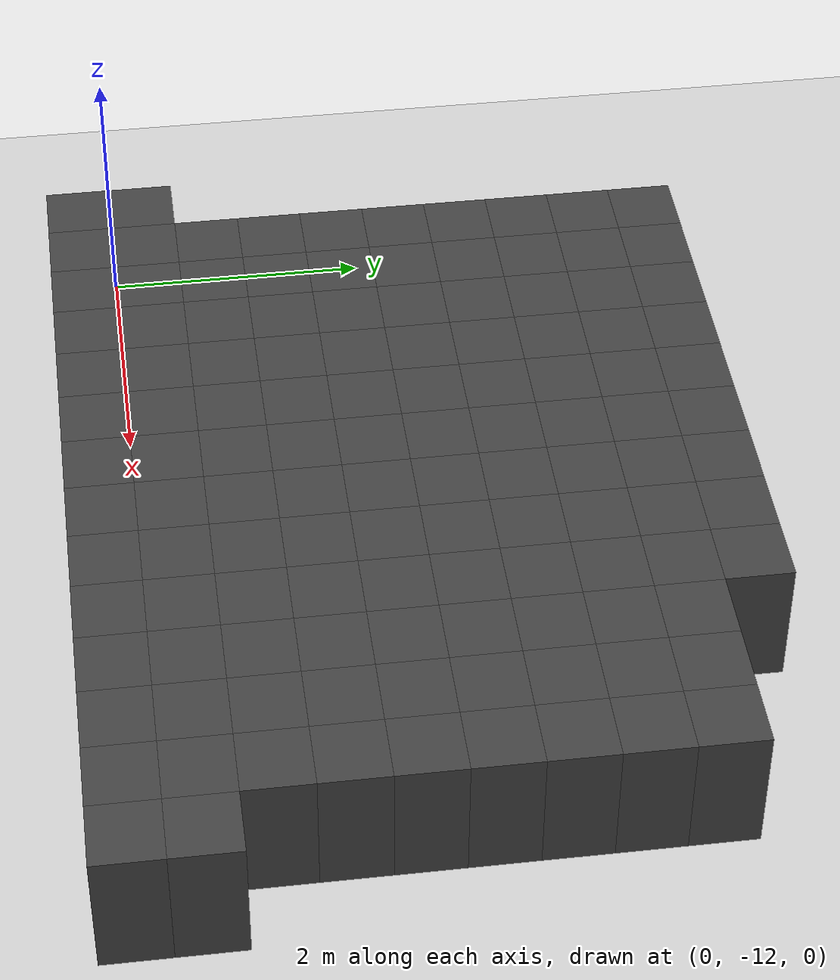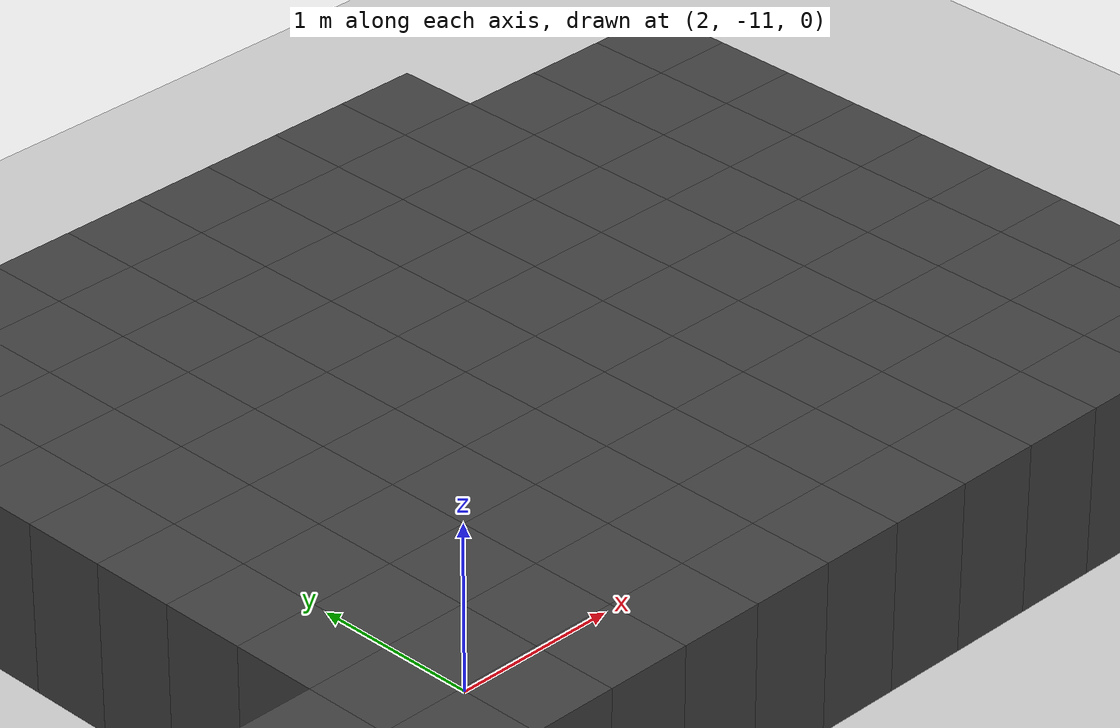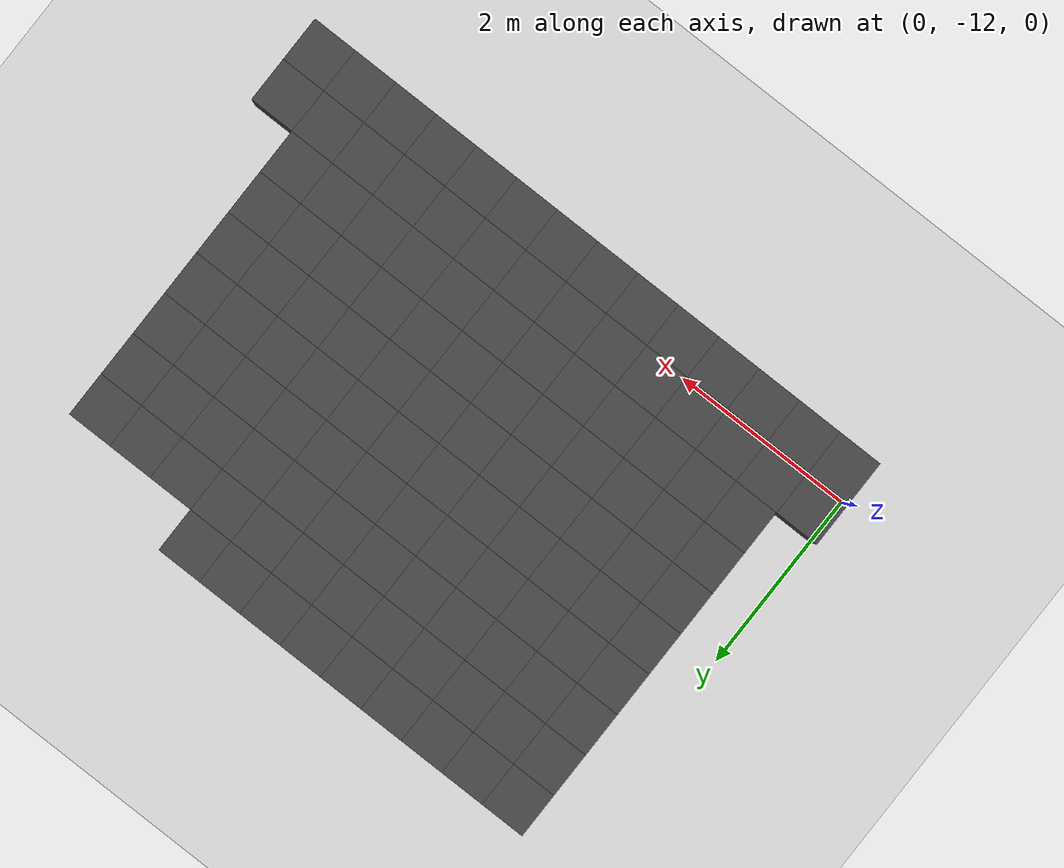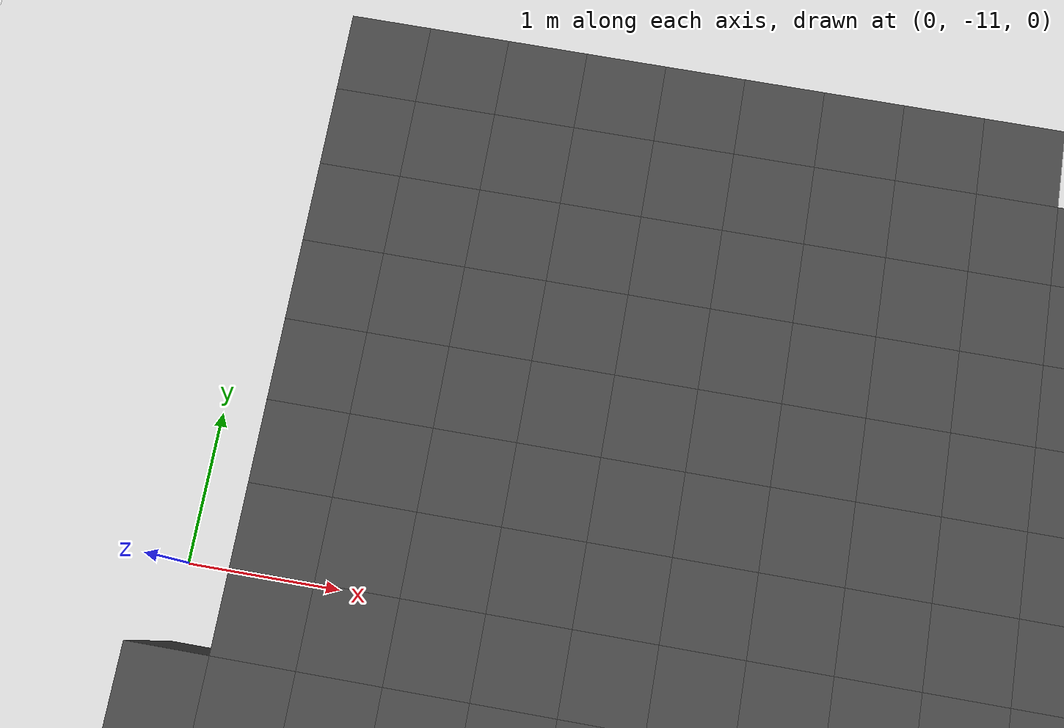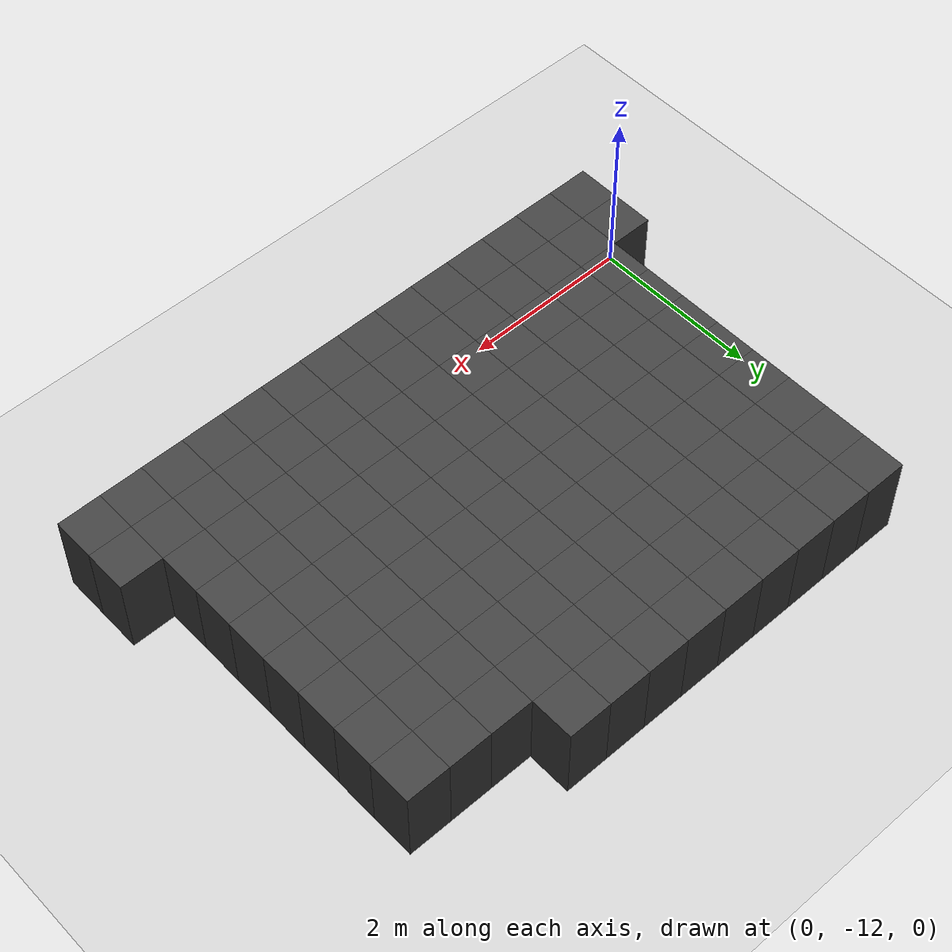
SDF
<sdf version="1.7">
 <world name="map_14510">
  <model name="ground_plane">
   <static>true</static>
   <link name="link">
    <collision name="collision">
     <geometry><plane><normal>0 0 1</normal><size>200 200</size></plane></geometry>
    </collision>
    <visual name="visual">
     <geometry><plane><normal>0 0 1</normal><size>200 200</size></plane></geometry>
     <material><ambient>0.8 0.8 0.8 1</ambient><diffuse>0.8 0.8 0.8 1</diffuse></material>
    </visual>
   </link>
  </model>
  <model name="maze_environment">
   <static>true</static>
   <link name="wall_1422">
    <pose>0.750 -7.750 0.500 0 0 0</pose>
    <collision name="col"><geometry><box><size>0.5 0.5 1.0</size></box></geometry></collision>
    <visual name="vis">
     <geometry><box><size>0.5 0.5 1.0</size></box></geometry>
     <material><ambient>0.15 0.15 0.15 1</ambient><diffuse>0.25 0.25 0.25 1</diffuse></material>
    </visual>
   </link>
   <link name="wall_1423">
    <pose>1.250 -7.750 0.500 0 0 0</pose>
    <collision name="col"><geometry><box><size>0.5 0.5 1.0</size></box></geometry></collision>
    <visual name="vis">
     <geometry><box><size>0.5 0.5 1.0</size></box></geometry>
     <material><ambient>0.15 0.15 0.15 1</ambient><diffuse>0.25 0.25 0.25 1</diffuse></material>
    </visual>
   </link>
   <link name="wall_1424">
    <pose>1.750 -7.750 0.500 0 0 0</pose>
    <collision name="col"><geometry><box><size>0.5 0.5 1.0</size></box></geometry></collision>
    <visual name="vis">
     <geometry><box><size>0.5 0.5 1.0</size></box></geometry>
     <material><ambient>0.15 0.15 0.15 1</ambient><diffuse>0.25 0.25 0.25 1</diffuse></material>
    </visual>
   </link>
   <link name="wall_1425">
    <pose>2.250 -7.750 0.500 0 0 0</pose>
    <collision name="col"><geometry><box><size>0.5 0.5 1.0</size></box></geometry></collision>
    <visual name="vis">
     <geometry><box><size>0.5 0.5 1.0</size></box></geometry>
     <material><ambient>0.15 0.15 0.15 1</ambient><diffuse>0.25 0.25 0.25 1</diffuse></material>
    </visual>
   </link>
   <link name="wall_1426">
    <pose>2.750 -7.750 0.500 0 0 0</pose>
    <collision name="col"><geometry><box><size>0.5 0.5 1.0</size></box></geometry></collision>
    <visual name="vis">
     <geometry><box><size>0.5 0.5 1.0</size></box></geometry>
     <material><ambient>0.15 0.15 0.15 1</ambient><diffuse>0.25 0.25 0.25 1</diffuse></material>
    </visual>
   </link>
   <link name="wall_1427">
    <pose>3.250 -7.750 0.500 0 0 0</pose>
    <collision name="col"><geometry><box><size>0.5 0.5 1.0</size></box></geometry></collision>
    <visual name="vis">
     <geometry><box><size>0.5 0.5 1.0</size></box></geometry>
     <material><ambient>0.15 0.15 0.15 1</ambient><diffuse>0.25 0.25 0.25 1</diffuse></material>
    </visual>
   </link>
   <link name="wall_1428">
    <pose>3.750 -7.750 0.500 0 0 0</pose>
    <collision name="col"><geometry><box><size>0.5 0.5 1.0</size></box></geometry></collision>
    <visual name="vis">
     <geometry><box><size>0.5 0.5 1.0</size></box></geometry>
     <material><ambient>0.15 0.15 0.15 1</ambient><diffuse>0.25 0.25 0.25 1</diffuse></material>
    </visual>
   </link>
   <link name="wall_1429">
    <pose>4.250 -7.750 0.500 0 0 0</pose>
    <collision name="col"><geometry><box><size>0.5 0.5 1.0</size></box></geometry></collision>
    <visual name="vis">
     <geometry><box><size>0.5 0.5 1.0</size></box></geometry>
     <material><ambient>0.15 0.15 0.15 1</ambient><diffuse>0.25 0.25 0.25 1</diffuse></material>
    </visual>
   </link>
   <link name="wall_1430">
    <pose>4.750 -7.750 0.500 0 0 0</pose>
    <collision name="col"><geometry><box><size>0.5 0.5 1.0</size></box></geometry></collision>
    <visual name="vis">
     <geometry><box><size>0.5 0.5 1.0</size></box></geometry>
     <material><ambient>0.15 0.15 0.15 1</ambient><diffuse>0.25 0.25 0.25 1</diffuse></material>
    </visual>
   </link>
   <link name="wall_1465">
    <pose>0.750 -8.250 0.500 0 0 0</pose>
    <collision name="col"><geometry><box><size>0.5 0.5 1.0</size></box></geometry></collision>
    <visual name="vis">
     <geometry><box><size>0.5 0.5 1.0</size></box></geometry>
     <material><ambient>0.15 0.15 0.15 1</ambient><diffuse>0.25 0.25 0.25 1</diffuse></material>
    </visual>
   </link>
   <link name="wall_1466">
    <pose>1.250 -8.250 0.500 0 0 0</pose>
    <collision name="col"><geometry><box><size>0.5 0.5 1.0</size></box></geometry></collision>
    <visual name="vis">
     <geometry><box><size>0.5 0.5 1.0</size></box></geometry>
     <material><ambient>0.15 0.15 0.15 1</ambient><diffuse>0.25 0.25 0.25 1</diffuse></material>
    </visual>
   </link>
   <link name="wall_1467">
    <pose>1.750 -8.250 0.500 0 0 0</pose>
    <collision name="col"><geometry><box><size>0.5 0.5 1.0</size></box></geometry></collision>
    <visual name="vis">
     <geometry><box><size>0.5 0.5 1.0</size></box></geometry>
     <material><ambient>0.15 0.15 0.15 1</ambient><diffuse>0.25 0.25 0.25 1</diffuse></material>
    </visual>
   </link>
   <link name="wall_1468">
    <pose>2.250 -8.250 0.500 0 0 0</pose>
    <collision name="col"><geometry><box><size>0.5 0.5 1.0</size></box></geometry></collision>
    <visual name="vis">
     <geometry><box><size>0.5 0.5 1.0</size></box></geometry>
     <material><ambient>0.15 0.15 0.15 1</ambient><diffuse>0.25 0.25 0.25 1</diffuse></material>
    </visual>
   </link>
   <link name="wall_1469">
    <pose>2.750 -8.250 0.500 0 0 0</pose>
    <collision name="col"><geometry><box><size>0.5 0.5 1.0</size></box></geometry></collision>
    <visual name="vis">
     <geometry><box><size>0.5 0.5 1.0</size></box></geometry>
     <material><ambient>0.15 0.15 0.15 1</ambient><diffuse>0.25 0.25 0.25 1</diffuse></material>
    </visual>
   </link>
   <link name="wall_1470">
    <pose>3.250 -8.250 0.500 0 0 0</pose>
    <collision name="col"><geometry><box><size>0.5 0.5 1.0</size></box></geometry></collision>
    <visual name="vis">
     <geometry><box><size>0.5 0.5 1.0</size></box></geometry>
     <material><ambient>0.15 0.15 0.15 1</ambient><diffuse>0.25 0.25 0.25 1</diffuse></material>
    </visual>
   </link>
   <link name="wall_1471">
    <pose>3.750 -8.250 0.500 0 0 0</pose>
    <collision name="col"><geometry><box><size>0.5 0.5 1.0</size></box></geometry></collision>
    <visual name="vis">
     <geometry><box><size>0.5 0.5 1.0</size></box></geometry>
     <material><ambient>0.15 0.15 0.15 1</ambient><diffuse>0.25 0.25 0.25 1</diffuse></material>
    </visual>
   </link>
   <link name="wall_1472">
    <pose>4.250 -8.250 0.500 0 0 0</pose>
    <collision name="col"><geometry><box><size>0.5 0.5 1.0</size></box></geometry></collision>
    <visual name="vis">
     <geometry><box><size>0.5 0.5 1.0</size></box></geometry>
     <material><ambient>0.15 0.15 0.15 1</ambient><diffuse>0.25 0.25 0.25 1</diffuse></material>
    </visual>
   </link>
   <link name="wall_1473">
    <pose>4.750 -8.250 0.500 0 0 0</pose>
    <collision name="col"><geometry><box><size>0.5 0.5 1.0</size></box></geometry></collision>
    <visual name="vis">
     <geometry><box><size>0.5 0.5 1.0</size></box></geometry>
     <material><ambient>0.15 0.15 0.15 1</ambient><diffuse>0.25 0.25 0.25 1</diffuse></material>
    </visual>
   </link>
   <link name="wall_1474">
    <pose>5.250 -8.250 0.500 0 0 0</pose>
    <collision name="col"><geometry><box><size>0.5 0.5 1.0</size></box></geometry></collision>
    <visual name="vis">
     <geometry><box><size>0.5 0.5 1.0</size></box></geometry>
     <material><ambient>0.15 0.15 0.15 1</ambient><diffuse>0.25 0.25 0.25 1</diffuse></material>
    </visual>
   </link>
   <link name="wall_1475">
    <pose>5.750 -8.250 0.500 0 0 0</pose>
    <collision name="col"><geometry><box><size>0.5 0.5 1.0</size></box></geometry></collision>
    <visual name="vis">
     <geometry><box><size>0.5 0.5 1.0</size></box></geometry>
     <material><ambient>0.15 0.15 0.15 1</ambient><diffuse>0.25 0.25 0.25 1</diffuse></material>
    </visual>
   </link>
   <link name="wall_1476">
    <pose>6.250 -8.250 0.500 0 0 0</pose>
    <collision name="col"><geometry><box><size>0.5 0.5 1.0</size></box></geometry></collision>
    <visual name="vis">
     <geometry><box><size>0.5 0.5 1.0</size></box></geometry>
     <material><ambient>0.15 0.15 0.15 1</ambient><diffuse>0.25 0.25 0.25 1</diffuse></material>
    </visual>
   </link>
   <link name="wall_1513">
    <pose>0.750 -8.750 0.500 0 0 0</pose>
    <collision name="col"><geometry><box><size>0.5 0.5 1.0</size></box></geometry></collision>
    <visual name="vis">
     <geometry><box><size>0.5 0.5 1.0</size></box></geometry>
     <material><ambient>0.15 0.15 0.15 1</ambient><diffuse>0.25 0.25 0.25 1</diffuse></material>
    </visual>
   </link>
   <link name="wall_1514">
    <pose>1.250 -8.750 0.500 0 0 0</pose>
    <collision name="col"><geometry><box><size>0.5 0.5 1.0</size></box></geometry></collision>
    <visual name="vis">
     <geometry><box><size>0.5 0.5 1.0</size></box></geometry>
     <material><ambient>0.15 0.15 0.15 1</ambient><diffuse>0.25 0.25 0.25 1</diffuse></material>
    </visual>
   </link>
   <link name="wall_1515">
    <pose>1.750 -8.750 0.500 0 0 0</pose>
    <collision name="col"><geometry><box><size>0.5 0.5 1.0</size></box></geometry></collision>
    <visual name="vis">
     <geometry><box><size>0.5 0.5 1.0</size></box></geometry>
     <material><ambient>0.15 0.15 0.15 1</ambient><diffuse>0.25 0.25 0.25 1</diffuse></material>
    </visual>
   </link>
   <link name="wall_1516">
    <pose>2.250 -8.750 0.500 0 0 0</pose>
    <collision name="col"><geometry><box><size>0.5 0.5 1.0</size></box></geometry></collision>
    <visual name="vis">
     <geometry><box><size>0.5 0.5 1.0</size></box></geometry>
     <material><ambient>0.15 0.15 0.15 1</ambient><diffuse>0.25 0.25 0.25 1</diffuse></material>
    </visual>
   </link>
   <link name="wall_1517">
    <pose>2.750 -8.750 0.500 0 0 0</pose>
    <collision name="col"><geometry><box><size>0.5 0.5 1.0</size></box></geometry></collision>
    <visual name="vis">
     <geometry><box><size>0.5 0.5 1.0</size></box></geometry>
     <material><ambient>0.15 0.15 0.15 1</ambient><diffuse>0.25 0.25 0.25 1</diffuse></material>
    </visual>
   </link>
   <link name="wall_1518">
    <pose>3.250 -8.750 0.500 0 0 0</pose>
    <collision name="col"><geometry><box><size>0.5 0.5 1.0</size></box></geometry></collision>
    <visual name="vis">
     <geometry><box><size>0.5 0.5 1.0</size></box></geometry>
     <material><ambient>0.15 0.15 0.15 1</ambient><diffuse>0.25 0.25 0.25 1</diffuse></material>
    </visual>
   </link>
   <link name="wall_1519">
    <pose>3.750 -8.750 0.500 0 0 0</pose>
    <collision name="col"><geometry><box><size>0.5 0.5 1.0</size></box></geometry></collision>
    <visual name="vis">
     <geometry><box><size>0.5 0.5 1.0</size></box></geometry>
     <material><ambient>0.15 0.15 0.15 1</ambient><diffuse>0.25 0.25 0.25 1</diffuse></material>
    </visual>
   </link>
   <link name="wall_1520">
    <pose>4.250 -8.750 0.500 0 0 0</pose>
    <collision name="col"><geometry><box><size>0.5 0.5 1.0</size></box></geometry></collision>
    <visual name="vis">
     <geometry><box><size>0.5 0.5 1.0</size></box></geometry>
     <material><ambient>0.15 0.15 0.15 1</ambient><diffuse>0.25 0.25 0.25 1</diffuse></material>
    </visual>
   </link>
   <link name="wall_1521">
    <pose>4.750 -8.750 0.500 0 0 0</pose>
    <collision name="col"><geometry><box><size>0.5 0.5 1.0</size></box></geometry></collision>
    <visual name="vis">
     <geometry><box><size>0.5 0.5 1.0</size></box></geometry>
     <material><ambient>0.15 0.15 0.15 1</ambient><diffuse>0.25 0.25 0.25 1</diffuse></material>
    </visual>
   </link>
   <link name="wall_1522">
    <pose>5.250 -8.750 0.500 0 0 0</pose>
    <collision name="col"><geometry><box><size>0.5 0.5 1.0</size></box></geometry></collision>
    <visual name="vis">
     <geometry><box><size>0.5 0.5 1.0</size></box></geometry>
     <material><ambient>0.15 0.15 0.15 1</ambient><diffuse>0.25 0.25 0.25 1</diffuse></material>
    </visual>
   </link>
   <link name="wall_1523">
    <pose>5.750 -8.750 0.500 0 0 0</pose>
    <collision name="col"><geometry><box><size>0.5 0.5 1.0</size></box></geometry></collision>
    <visual name="vis">
     <geometry><box><size>0.5 0.5 1.0</size></box></geometry>
     <material><ambient>0.15 0.15 0.15 1</ambient><diffuse>0.25 0.25 0.25 1</diffuse></material>
    </visual>
   </link>
   <link name="wall_1524">
    <pose>6.250 -8.750 0.500 0 0 0</pose>
    <collision name="col"><geometry><box><size>0.5 0.5 1.0</size></box></geometry></collision>
    <visual name="vis">
     <geometry><box><size>0.5 0.5 1.0</size></box></geometry>
     <material><ambient>0.15 0.15 0.15 1</ambient><diffuse>0.25 0.25 0.25 1</diffuse></material>
    </visual>
   </link>
   <link name="wall_1554">
    <pose>0.750 -9.250 0.500 0 0 0</pose>
    <collision name="col"><geometry><box><size>0.5 0.5 1.0</size></box></geometry></collision>
    <visual name="vis">
     <geometry><box><size>0.5 0.5 1.0</size></box></geometry>
     <material><ambient>0.15 0.15 0.15 1</ambient><diffuse>0.25 0.25 0.25 1</diffuse></material>
    </visual>
   </link>
   <link name="wall_1555">
    <pose>1.250 -9.250 0.500 0 0 0</pose>
    <collision name="col"><geometry><box><size>0.5 0.5 1.0</size></box></geometry></collision>
    <visual name="vis">
     <geometry><box><size>0.5 0.5 1.0</size></box></geometry>
     <material><ambient>0.15 0.15 0.15 1</ambient><diffuse>0.25 0.25 0.25 1</diffuse></material>
    </visual>
   </link>
   <link name="wall_1556">
    <pose>1.750 -9.250 0.500 0 0 0</pose>
    <collision name="col"><geometry><box><size>0.5 0.5 1.0</size></box></geometry></collision>
    <visual name="vis">
     <geometry><box><size>0.5 0.5 1.0</size></box></geometry>
     <material><ambient>0.15 0.15 0.15 1</ambient><diffuse>0.25 0.25 0.25 1</diffuse></material>
    </visual>
   </link>
   <link name="wall_1557">
    <pose>2.250 -9.250 0.500 0 0 0</pose>
    <collision name="col"><geometry><box><size>0.5 0.5 1.0</size></box></geometry></collision>
    <visual name="vis">
     <geometry><box><size>0.5 0.5 1.0</size></box></geometry>
     <material><ambient>0.15 0.15 0.15 1</ambient><diffuse>0.25 0.25 0.25 1</diffuse></material>
    </visual>
   </link>
   <link name="wall_1558">
    <pose>2.750 -9.250 0.500 0 0 0</pose>
    <collision name="col"><geometry><box><size>0.5 0.5 1.0</size></box></geometry></collision>
    <visual name="vis">
     <geometry><box><size>0.5 0.5 1.0</size></box></geometry>
     <material><ambient>0.15 0.15 0.15 1</ambient><diffuse>0.25 0.25 0.25 1</diffuse></material>
    </visual>
   </link>
   <link name="wall_1559">
    <pose>3.250 -9.250 0.500 0 0 0</pose>
    <collision name="col"><geometry><box><size>0.5 0.5 1.0</size></box></geometry></collision>
    <visual name="vis">
     <geometry><box><size>0.5 0.5 1.0</size></box></geometry>
     <material><ambient>0.15 0.15 0.15 1</ambient><diffuse>0.25 0.25 0.25 1</diffuse></material>
    </visual>
   </link>
   <link name="wall_1560">
    <pose>3.750 -9.250 0.500 0 0 0</pose>
    <collision name="col"><geometry><box><size>0.5 0.5 1.0</size></box></geometry></collision>
    <visual name="vis">
     <geometry><box><size>0.5 0.5 1.0</size></box></geometry>
     <material><ambient>0.15 0.15 0.15 1</ambient><diffuse>0.25 0.25 0.25 1</diffuse></material>
    </visual>
   </link>
   <link name="wall_1561">
    <pose>4.250 -9.250 0.500 0 0 0</pose>
    <collision name="col"><geometry><box><size>0.5 0.5 1.0</size></box></geometry></collision>
    <visual name="vis">
     <geometry><box><size>0.5 0.5 1.0</size></box></geometry>
     <material><ambient>0.15 0.15 0.15 1</ambient><diffuse>0.25 0.25 0.25 1</diffuse></material>
    </visual>
   </link>
   <link name="wall_1562">
    <pose>4.750 -9.250 0.500 0 0 0</pose>
    <collision name="col"><geometry><box><size>0.5 0.5 1.0</size></box></geometry></collision>
    <visual name="vis">
     <geometry><box><size>0.5 0.5 1.0</size></box></geometry>
     <material><ambient>0.15 0.15 0.15 1</ambient><diffuse>0.25 0.25 0.25 1</diffuse></material>
    </visual>
   </link>
   <link name="wall_1563">
    <pose>5.250 -9.250 0.500 0 0 0</pose>
    <collision name="col"><geometry><box><size>0.5 0.5 1.0</size></box></geometry></collision>
    <visual name="vis">
     <geometry><box><size>0.5 0.5 1.0</size></box></geometry>
     <material><ambient>0.15 0.15 0.15 1</ambient><diffuse>0.25 0.25 0.25 1</diffuse></material>
    </visual>
   </link>
   <link name="wall_1564">
    <pose>5.750 -9.250 0.500 0 0 0</pose>
    <collision name="col"><geometry><box><size>0.5 0.5 1.0</size></box></geometry></collision>
    <visual name="vis">
     <geometry><box><size>0.5 0.5 1.0</size></box></geometry>
     <material><ambient>0.15 0.15 0.15 1</ambient><diffuse>0.25 0.25 0.25 1</diffuse></material>
    </visual>
   </link>
   <link name="wall_1565">
    <pose>6.250 -9.250 0.500 0 0 0</pose>
    <collision name="col"><geometry><box><size>0.5 0.5 1.0</size></box></geometry></collision>
    <visual name="vis">
     <geometry><box><size>0.5 0.5 1.0</size></box></geometry>
     <material><ambient>0.15 0.15 0.15 1</ambient><diffuse>0.25 0.25 0.25 1</diffuse></material>
    </visual>
   </link>
   <link name="wall_1595">
    <pose>0.750 -9.750 0.500 0 0 0</pose>
    <collision name="col"><geometry><box><size>0.5 0.5 1.0</size></box></geometry></collision>
    <visual name="vis">
     <geometry><box><size>0.5 0.5 1.0</size></box></geometry>
     <material><ambient>0.15 0.15 0.15 1</ambient><diffuse>0.25 0.25 0.25 1</diffuse></material>
    </visual>
   </link>
   <link name="wall_1596">
    <pose>1.250 -9.750 0.500 0 0 0</pose>
    <collision name="col"><geometry><box><size>0.5 0.5 1.0</size></box></geometry></collision>
    <visual name="vis">
     <geometry><box><size>0.5 0.5 1.0</size></box></geometry>
     <material><ambient>0.15 0.15 0.15 1</ambient><diffuse>0.25 0.25 0.25 1</diffuse></material>
    </visual>
   </link>
   <link name="wall_1597">
    <pose>1.750 -9.750 0.500 0 0 0</pose>
    <collision name="col"><geometry><box><size>0.5 0.5 1.0</size></box></geometry></collision>
    <visual name="vis">
     <geometry><box><size>0.5 0.5 1.0</size></box></geometry>
     <material><ambient>0.15 0.15 0.15 1</ambient><diffuse>0.25 0.25 0.25 1</diffuse></material>
    </visual>
   </link>
   <link name="wall_1598">
    <pose>2.250 -9.750 0.500 0 0 0</pose>
    <collision name="col"><geometry><box><size>0.5 0.5 1.0</size></box></geometry></collision>
    <visual name="vis">
     <geometry><box><size>0.5 0.5 1.0</size></box></geometry>
     <material><ambient>0.15 0.15 0.15 1</ambient><diffuse>0.25 0.25 0.25 1</diffuse></material>
    </visual>
   </link>
   <link name="wall_1599">
    <pose>2.750 -9.750 0.500 0 0 0</pose>
    <collision name="col"><geometry><box><size>0.5 0.5 1.0</size></box></geometry></collision>
    <visual name="vis">
     <geometry><box><size>0.5 0.5 1.0</size></box></geometry>
     <material><ambient>0.15 0.15 0.15 1</ambient><diffuse>0.25 0.25 0.25 1</diffuse></material>
    </visual>
   </link>
   <link name="wall_1600">
    <pose>3.250 -9.750 0.500 0 0 0</pose>
    <collision name="col"><geometry><box><size>0.5 0.5 1.0</size></box></geometry></collision>
    <visual name="vis">
     <geometry><box><size>0.5 0.5 1.0</size></box></geometry>
     <material><ambient>0.15 0.15 0.15 1</ambient><diffuse>0.25 0.25 0.25 1</diffuse></material>
    </visual>
   </link>
   <link name="wall_1601">
    <pose>3.750 -9.750 0.500 0 0 0</pose>
    <collision name="col"><geometry><box><size>0.5 0.5 1.0</size></box></geometry></collision>
    <visual name="vis">
     <geometry><box><size>0.5 0.5 1.0</size></box></geometry>
     <material><ambient>0.15 0.15 0.15 1</ambient><diffuse>0.25 0.25 0.25 1</diffuse></material>
    </visual>
   </link>
   <link name="wall_1602">
    <pose>4.250 -9.750 0.500 0 0 0</pose>
    <collision name="col"><geometry><box><size>0.5 0.5 1.0</size></box></geometry></collision>
    <visual name="vis">
     <geometry><box><size>0.5 0.5 1.0</size></box></geometry>
     <material><ambient>0.15 0.15 0.15 1</ambient><diffuse>0.25 0.25 0.25 1</diffuse></material>
    </visual>
   </link>
   <link name="wall_1603">
    <pose>4.750 -9.750 0.500 0 0 0</pose>
    <collision name="col"><geometry><box><size>0.5 0.5 1.0</size></box></geometry></collision>
    <visual name="vis">
     <geometry><box><size>0.5 0.5 1.0</size></box></geometry>
     <material><ambient>0.15 0.15 0.15 1</ambient><diffuse>0.25 0.25 0.25 1</diffuse></material>
    </visual>
   </link>
   <link name="wall_1604">
    <pose>5.250 -9.750 0.500 0 0 0</pose>
    <collision name="col"><geometry><box><size>0.5 0.5 1.0</size></box></geometry></collision>
    <visual name="vis">
     <geometry><box><size>0.5 0.5 1.0</size></box></geometry>
     <material><ambient>0.15 0.15 0.15 1</ambient><diffuse>0.25 0.25 0.25 1</diffuse></material>
    </visual>
   </link>
   <link name="wall_1605">
    <pose>5.750 -9.750 0.500 0 0 0</pose>
    <collision name="col"><geometry><box><size>0.5 0.5 1.0</size></box></geometry></collision>
    <visual name="vis">
     <geometry><box><size>0.5 0.5 1.0</size></box></geometry>
     <material><ambient>0.15 0.15 0.15 1</ambient><diffuse>0.25 0.25 0.25 1</diffuse></material>
    </visual>
   </link>
   <link name="wall_1606">
    <pose>6.250 -9.750 0.500 0 0 0</pose>
    <collision name="col"><geometry><box><size>0.5 0.5 1.0</size></box></geometry></collision>
    <visual name="vis">
     <geometry><box><size>0.5 0.5 1.0</size></box></geometry>
     <material><ambient>0.15 0.15 0.15 1</ambient><diffuse>0.25 0.25 0.25 1</diffuse></material>
    </visual>
   </link>
   <link name="wall_1627">
    <pose>0.750 -10.250 0.500 0 0 0</pose>
    <collision name="col"><geometry><box><size>0.5 0.5 1.0</size></box></geometry></collision>
    <visual name="vis">
     <geometry><box><size>0.5 0.5 1.0</size></box></geometry>
     <material><ambient>0.15 0.15 0.15 1</ambient><diffuse>0.25 0.25 0.25 1</diffuse></material>
    </visual>
   </link>
   <link name="wall_1628">
    <pose>1.250 -10.250 0.500 0 0 0</pose>
    <collision name="col"><geometry><box><size>0.5 0.5 1.0</size></box></geometry></collision>
    <visual name="vis">
     <geometry><box><size>0.5 0.5 1.0</size></box></geometry>
     <material><ambient>0.15 0.15 0.15 1</ambient><diffuse>0.25 0.25 0.25 1</diffuse></material>
    </visual>
   </link>
   <link name="wall_1629">
    <pose>1.750 -10.250 0.500 0 0 0</pose>
    <collision name="col"><geometry><box><size>0.5 0.5 1.0</size></box></geometry></collision>
    <visual name="vis">
     <geometry><box><size>0.5 0.5 1.0</size></box></geometry>
     <material><ambient>0.15 0.15 0.15 1</ambient><diffuse>0.25 0.25 0.25 1</diffuse></material>
    </visual>
   </link>
   <link name="wall_1630">
    <pose>2.250 -10.250 0.500 0 0 0</pose>
    <collision name="col"><geometry><box><size>0.5 0.5 1.0</size></box></geometry></collision>
    <visual name="vis">
     <geometry><box><size>0.5 0.5 1.0</size></box></geometry>
     <material><ambient>0.15 0.15 0.15 1</ambient><diffuse>0.25 0.25 0.25 1</diffuse></material>
    </visual>
   </link>
   <link name="wall_1631">
    <pose>2.750 -10.250 0.500 0 0 0</pose>
    <collision name="col"><geometry><box><size>0.5 0.5 1.0</size></box></geometry></collision>
    <visual name="vis">
     <geometry><box><size>0.5 0.5 1.0</size></box></geometry>
     <material><ambient>0.15 0.15 0.15 1</ambient><diffuse>0.25 0.25 0.25 1</diffuse></material>
    </visual>
   </link>
   <link name="wall_1632">
    <pose>3.250 -10.250 0.500 0 0 0</pose>
    <collision name="col"><geometry><box><size>0.5 0.5 1.0</size></box></geometry></collision>
    <visual name="vis">
     <geometry><box><size>0.5 0.5 1.0</size></box></geometry>
     <material><ambient>0.15 0.15 0.15 1</ambient><diffuse>0.25 0.25 0.25 1</diffuse></material>
    </visual>
   </link>
   <link name="wall_1633">
    <pose>3.750 -10.250 0.500 0 0 0</pose>
    <collision name="col"><geometry><box><size>0.5 0.5 1.0</size></box></geometry></collision>
    <visual name="vis">
     <geometry><box><size>0.5 0.5 1.0</size></box></geometry>
     <material><ambient>0.15 0.15 0.15 1</ambient><diffuse>0.25 0.25 0.25 1</diffuse></material>
    </visual>
   </link>
   <link name="wall_1634">
    <pose>4.250 -10.250 0.500 0 0 0</pose>
    <collision name="col"><geometry><box><size>0.5 0.5 1.0</size></box></geometry></collision>
    <visual name="vis">
     <geometry><box><size>0.5 0.5 1.0</size></box></geometry>
     <material><ambient>0.15 0.15 0.15 1</ambient><diffuse>0.25 0.25 0.25 1</diffuse></material>
    </visual>
   </link>
   <link name="wall_1635">
    <pose>4.750 -10.250 0.500 0 0 0</pose>
    <collision name="col"><geometry><box><size>0.5 0.5 1.0</size></box></geometry></collision>
    <visual name="vis">
     <geometry><box><size>0.5 0.5 1.0</size></box></geometry>
     <material><ambient>0.15 0.15 0.15 1</ambient><diffuse>0.25 0.25 0.25 1</diffuse></material>
    </visual>
   </link>
   <link name="wall_1636">
    <pose>5.250 -10.250 0.500 0 0 0</pose>
    <collision name="col"><geometry><box><size>0.5 0.5 1.0</size></box></geometry></collision>
    <visual name="vis">
     <geometry><box><size>0.5 0.5 1.0</size></box></geometry>
     <material><ambient>0.15 0.15 0.15 1</ambient><diffuse>0.25 0.25 0.25 1</diffuse></material>
    </visual>
   </link>
   <link name="wall_1637">
    <pose>5.750 -10.250 0.500 0 0 0</pose>
    <collision name="col"><geometry><box><size>0.5 0.5 1.0</size></box></geometry></collision>
    <visual name="vis">
     <geometry><box><size>0.5 0.5 1.0</size></box></geometry>
     <material><ambient>0.15 0.15 0.15 1</ambient><diffuse>0.25 0.25 0.25 1</diffuse></material>
    </visual>
   </link>
   <link name="wall_1638">
    <pose>6.250 -10.250 0.500 0 0 0</pose>
    <collision name="col"><geometry><box><size>0.5 0.5 1.0</size></box></geometry></collision>
    <visual name="vis">
     <geometry><box><size>0.5 0.5 1.0</size></box></geometry>
     <material><ambient>0.15 0.15 0.15 1</ambient><diffuse>0.25 0.25 0.25 1</diffuse></material>
    </visual>
   </link>
   <link name="wall_1669">
    <pose>0.750 -10.750 0.500 0 0 0</pose>
    <collision name="col"><geometry><box><size>0.5 0.5 1.0</size></box></geometry></collision>
    <visual name="vis">
     <geometry><box><size>0.5 0.5 1.0</size></box></geometry>
     <material><ambient>0.15 0.15 0.15 1</ambient><diffuse>0.25 0.25 0.25 1</diffuse></material>
    </visual>
   </link>
   <link name="wall_1670">
    <pose>1.250 -10.750 0.500 0 0 0</pose>
    <collision name="col"><geometry><box><size>0.5 0.5 1.0</size></box></geometry></collision>
    <visual name="vis">
     <geometry><box><size>0.5 0.5 1.0</size></box></geometry>
     <material><ambient>0.15 0.15 0.15 1</ambient><diffuse>0.25 0.25 0.25 1</diffuse></material>
    </visual>
   </link>
   <link name="wall_1671">
    <pose>1.750 -10.750 0.500 0 0 0</pose>
    <collision name="col"><geometry><box><size>0.5 0.5 1.0</size></box></geometry></collision>
    <visual name="vis">
     <geometry><box><size>0.5 0.5 1.0</size></box></geometry>
     <material><ambient>0.15 0.15 0.15 1</ambient><diffuse>0.25 0.25 0.25 1</diffuse></material>
    </visual>
   </link>
   <link name="wall_1672">
    <pose>2.250 -10.750 0.500 0 0 0</pose>
    <collision name="col"><geometry><box><size>0.5 0.5 1.0</size></box></geometry></collision>
    <visual name="vis">
     <geometry><box><size>0.5 0.5 1.0</size></box></geometry>
     <material><ambient>0.15 0.15 0.15 1</ambient><diffuse>0.25 0.25 0.25 1</diffuse></material>
    </visual>
   </link>
   <link name="wall_1673">
    <pose>2.750 -10.750 0.500 0 0 0</pose>
    <collision name="col"><geometry><box><size>0.5 0.5 1.0</size></box></geometry></collision>
    <visual name="vis">
     <geometry><box><size>0.5 0.5 1.0</size></box></geometry>
     <material><ambient>0.15 0.15 0.15 1</ambient><diffuse>0.25 0.25 0.25 1</diffuse></material>
    </visual>
   </link>
   <link name="wall_1674">
    <pose>3.250 -10.750 0.500 0 0 0</pose>
    <collision name="col"><geometry><box><size>0.5 0.5 1.0</size></box></geometry></collision>
    <visual name="vis">
     <geometry><box><size>0.5 0.5 1.0</size></box></geometry>
     <material><ambient>0.15 0.15 0.15 1</ambient><diffuse>0.25 0.25 0.25 1</diffuse></material>
    </visual>
   </link>
   <link name="wall_1675">
    <pose>3.750 -10.750 0.500 0 0 0</pose>
    <collision name="col"><geometry><box><size>0.5 0.5 1.0</size></box></geometry></collision>
    <visual name="vis">
     <geometry><box><size>0.5 0.5 1.0</size></box></geometry>
     <material><ambient>0.15 0.15 0.15 1</ambient><diffuse>0.25 0.25 0.25 1</diffuse></material>
    </visual>
   </link>
   <link name="wall_1676">
    <pose>4.250 -10.750 0.500 0 0 0</pose>
    <collision name="col"><geometry><box><size>0.5 0.5 1.0</size></box></geometry></collision>
    <visual name="vis">
     <geometry><box><size>0.5 0.5 1.0</size></box></geometry>
     <material><ambient>0.15 0.15 0.15 1</ambient><diffuse>0.25 0.25 0.25 1</diffuse></material>
    </visual>
   </link>
   <link name="wall_1677">
    <pose>4.750 -10.750 0.500 0 0 0</pose>
    <collision name="col"><geometry><box><size>0.5 0.5 1.0</size></box></geometry></collision>
    <visual name="vis">
     <geometry><box><size>0.5 0.5 1.0</size></box></geometry>
     <material><ambient>0.15 0.15 0.15 1</ambient><diffuse>0.25 0.25 0.25 1</diffuse></material>
    </visual>
   </link>
   <link name="wall_1678">
    <pose>5.250 -10.750 0.500 0 0 0</pose>
    <collision name="col"><geometry><box><size>0.5 0.5 1.0</size></box></geometry></collision>
    <visual name="vis">
     <geometry><box><size>0.5 0.5 1.0</size></box></geometry>
     <material><ambient>0.15 0.15 0.15 1</ambient><diffuse>0.25 0.25 0.25 1</diffuse></material>
    </visual>
   </link>
   <link name="wall_1679">
    <pose>5.750 -10.750 0.500 0 0 0</pose>
    <collision name="col"><geometry><box><size>0.5 0.5 1.0</size></box></geometry></collision>
    <visual name="vis">
     <geometry><box><size>0.5 0.5 1.0</size></box></geometry>
     <material><ambient>0.15 0.15 0.15 1</ambient><diffuse>0.25 0.25 0.25 1</diffuse></material>
    </visual>
   </link>
   <link name="wall_1680">
    <pose>6.250 -10.750 0.500 0 0 0</pose>
    <collision name="col"><geometry><box><size>0.5 0.5 1.0</size></box></geometry></collision>
    <visual name="vis">
     <geometry><box><size>0.5 0.5 1.0</size></box></geometry>
     <material><ambient>0.15 0.15 0.15 1</ambient><diffuse>0.25 0.25 0.25 1</diffuse></material>
    </visual>
   </link>
   <link name="wall_1708">
    <pose>0.750 -11.250 0.500 0 0 0</pose>
    <collision name="col"><geometry><box><size>0.5 0.5 1.0</size></box></geometry></collision>
    <visual name="vis">
     <geometry><box><size>0.5 0.5 1.0</size></box></geometry>
     <material><ambient>0.15 0.15 0.15 1</ambient><diffuse>0.25 0.25 0.25 1</diffuse></material>
    </visual>
   </link>
   <link name="wall_1709">
    <pose>1.250 -11.250 0.500 0 0 0</pose>
    <collision name="col"><geometry><box><size>0.5 0.5 1.0</size></box></geometry></collision>
    <visual name="vis">
     <geometry><box><size>0.5 0.5 1.0</size></box></geometry>
     <material><ambient>0.15 0.15 0.15 1</ambient><diffuse>0.25 0.25 0.25 1</diffuse></material>
    </visual>
   </link>
   <link name="wall_1710">
    <pose>1.750 -11.250 0.500 0 0 0</pose>
    <collision name="col"><geometry><box><size>0.5 0.5 1.0</size></box></geometry></collision>
    <visual name="vis">
     <geometry><box><size>0.5 0.5 1.0</size></box></geometry>
     <material><ambient>0.15 0.15 0.15 1</ambient><diffuse>0.25 0.25 0.25 1</diffuse></material>
    </visual>
   </link>
   <link name="wall_1711">
    <pose>2.250 -11.250 0.500 0 0 0</pose>
    <collision name="col"><geometry><box><size>0.5 0.5 1.0</size></box></geometry></collision>
    <visual name="vis">
     <geometry><box><size>0.5 0.5 1.0</size></box></geometry>
     <material><ambient>0.15 0.15 0.15 1</ambient><diffuse>0.25 0.25 0.25 1</diffuse></material>
    </visual>
   </link>
   <link name="wall_1712">
    <pose>2.750 -11.250 0.500 0 0 0</pose>
    <collision name="col"><geometry><box><size>0.5 0.5 1.0</size></box></geometry></collision>
    <visual name="vis">
     <geometry><box><size>0.5 0.5 1.0</size></box></geometry>
     <material><ambient>0.15 0.15 0.15 1</ambient><diffuse>0.25 0.25 0.25 1</diffuse></material>
    </visual>
   </link>
   <link name="wall_1713">
    <pose>3.250 -11.250 0.500 0 0 0</pose>
    <collision name="col"><geometry><box><size>0.5 0.5 1.0</size></box></geometry></collision>
    <visual name="vis">
     <geometry><box><size>0.5 0.5 1.0</size></box></geometry>
     <material><ambient>0.15 0.15 0.15 1</ambient><diffuse>0.25 0.25 0.25 1</diffuse></material>
    </visual>
   </link>
   <link name="wall_1714">
    <pose>3.750 -11.250 0.500 0 0 0</pose>
    <collision name="col"><geometry><box><size>0.5 0.5 1.0</size></box></geometry></collision>
    <visual name="vis">
     <geometry><box><size>0.5 0.5 1.0</size></box></geometry>
     <material><ambient>0.15 0.15 0.15 1</ambient><diffuse>0.25 0.25 0.25 1</diffuse></material>
    </visual>
   </link>
   <link name="wall_1715">
    <pose>4.250 -11.250 0.500 0 0 0</pose>
    <collision name="col"><geometry><box><size>0.5 0.5 1.0</size></box></geometry></collision>
    <visual name="vis">
     <geometry><box><size>0.5 0.5 1.0</size></box></geometry>
     <material><ambient>0.15 0.15 0.15 1</ambient><diffuse>0.25 0.25 0.25 1</diffuse></material>
    </visual>
   </link>
   <link name="wall_1716">
    <pose>4.750 -11.250 0.500 0 0 0</pose>
    <collision name="col"><geometry><box><size>0.5 0.5 1.0</size></box></geometry></collision>
    <visual name="vis">
     <geometry><box><size>0.5 0.5 1.0</size></box></geometry>
     <material><ambient>0.15 0.15 0.15 1</ambient><diffuse>0.25 0.25 0.25 1</diffuse></material>
    </visual>
   </link>
   <link name="wall_1717">
    <pose>5.250 -11.250 0.500 0 0 0</pose>
    <collision name="col"><geometry><box><size>0.5 0.5 1.0</size></box></geometry></collision>
    <visual name="vis">
     <geometry><box><size>0.5 0.5 1.0</size></box></geometry>
     <material><ambient>0.15 0.15 0.15 1</ambient><diffuse>0.25 0.25 0.25 1</diffuse></material>
    </visual>
   </link>
   <link name="wall_1718">
    <pose>5.750 -11.250 0.500 0 0 0</pose>
    <collision name="col"><geometry><box><size>0.5 0.5 1.0</size></box></geometry></collision>
    <visual name="vis">
     <geometry><box><size>0.5 0.5 1.0</size></box></geometry>
     <material><ambient>0.15 0.15 0.15 1</ambient><diffuse>0.25 0.25 0.25 1</diffuse></material>
    </visual>
   </link>
   <link name="wall_1719">
    <pose>6.250 -11.250 0.500 0 0 0</pose>
    <collision name="col"><geometry><box><size>0.5 0.5 1.0</size></box></geometry></collision>
    <visual name="vis">
     <geometry><box><size>0.5 0.5 1.0</size></box></geometry>
     <material><ambient>0.15 0.15 0.15 1</ambient><diffuse>0.25 0.25 0.25 1</diffuse></material>
    </visual>
   </link>
   <link name="wall_1746">
    <pose>0.250 -11.750 0.500 0 0 0</pose>
    <collision name="col"><geometry><box><size>0.5 0.5 1.0</size></box></geometry></collision>
    <visual name="vis">
     <geometry><box><size>0.5 0.5 1.0</size></box></geometry>
     <material><ambient>0.15 0.15 0.15 1</ambient><diffuse>0.25 0.25 0.25 1</diffuse></material>
    </visual>
   </link>
   <link name="wall_1747">
    <pose>0.750 -11.750 0.500 0 0 0</pose>
    <collision name="col"><geometry><box><size>0.5 0.5 1.0</size></box></geometry></collision>
    <visual name="vis">
     <geometry><box><size>0.5 0.5 1.0</size></box></geometry>
     <material><ambient>0.15 0.15 0.15 1</ambient><diffuse>0.25 0.25 0.25 1</diffuse></material>
    </visual>
   </link>
   <link name="wall_1748">
    <pose>1.250 -11.750 0.500 0 0 0</pose>
    <collision name="col"><geometry><box><size>0.5 0.5 1.0</size></box></geometry></collision>
    <visual name="vis">
     <geometry><box><size>0.5 0.5 1.0</size></box></geometry>
     <material><ambient>0.15 0.15 0.15 1</ambient><diffuse>0.25 0.25 0.25 1</diffuse></material>
    </visual>
   </link>
   <link name="wall_1749">
    <pose>1.750 -11.750 0.500 0 0 0</pose>
    <collision name="col"><geometry><box><size>0.5 0.5 1.0</size></box></geometry></collision>
    <visual name="vis">
     <geometry><box><size>0.5 0.5 1.0</size></box></geometry>
     <material><ambient>0.15 0.15 0.15 1</ambient><diffuse>0.25 0.25 0.25 1</diffuse></material>
    </visual>
   </link>
   <link name="wall_1750">
    <pose>2.250 -11.750 0.500 0 0 0</pose>
    <collision name="col"><geometry><box><size>0.5 0.5 1.0</size></box></geometry></collision>
    <visual name="vis">
     <geometry><box><size>0.5 0.5 1.0</size></box></geometry>
     <material><ambient>0.15 0.15 0.15 1</ambient><diffuse>0.25 0.25 0.25 1</diffuse></material>
    </visual>
   </link>
   <link name="wall_1751">
    <pose>2.750 -11.750 0.500 0 0 0</pose>
    <collision name="col"><geometry><box><size>0.5 0.5 1.0</size></box></geometry></collision>
    <visual name="vis">
     <geometry><box><size>0.5 0.5 1.0</size></box></geometry>
     <material><ambient>0.15 0.15 0.15 1</ambient><diffuse>0.25 0.25 0.25 1</diffuse></material>
    </visual>
   </link>
   <link name="wall_1752">
    <pose>3.250 -11.750 0.500 0 0 0</pose>
    <collision name="col"><geometry><box><size>0.5 0.5 1.0</size></box></geometry></collision>
    <visual name="vis">
     <geometry><box><size>0.5 0.5 1.0</size></box></geometry>
     <material><ambient>0.15 0.15 0.15 1</ambient><diffuse>0.25 0.25 0.25 1</diffuse></material>
    </visual>
   </link>
   <link name="wall_1753">
    <pose>3.750 -11.750 0.500 0 0 0</pose>
    <collision name="col"><geometry><box><size>0.5 0.5 1.0</size></box></geometry></collision>
    <visual name="vis">
     <geometry><box><size>0.5 0.5 1.0</size></box></geometry>
     <material><ambient>0.15 0.15 0.15 1</ambient><diffuse>0.25 0.25 0.25 1</diffuse></material>
    </visual>
   </link>
   <link name="wall_1754">
    <pose>4.250 -11.750 0.500 0 0 0</pose>
    <collision name="col"><geometry><box><size>0.5 0.5 1.0</size></box></geometry></collision>
    <visual name="vis">
     <geometry><box><size>0.5 0.5 1.0</size></box></geometry>
     <material><ambient>0.15 0.15 0.15 1</ambient><diffuse>0.25 0.25 0.25 1</diffuse></material>
    </visual>
   </link>
   <link name="wall_1755">
    <pose>4.750 -11.750 0.500 0 0 0</pose>
    <collision name="col"><geometry><box><size>0.5 0.5 1.0</size></box></geometry></collision>
    <visual name="vis">
     <geometry><box><size>0.5 0.5 1.0</size></box></geometry>
     <material><ambient>0.15 0.15 0.15 1</ambient><diffuse>0.25 0.25 0.25 1</diffuse></material>
    </visual>
   </link>
   <link name="wall_1756">
    <pose>5.250 -11.750 0.500 0 0 0</pose>
    <collision name="col"><geometry><box><size>0.5 0.5 1.0</size></box></geometry></collision>
    <visual name="vis">
     <geometry><box><size>0.5 0.5 1.0</size></box></geometry>
     <material><ambient>0.15 0.15 0.15 1</ambient><diffuse>0.25 0.25 0.25 1</diffuse></material>
    </visual>
   </link>
   <link name="wall_1757">
    <pose>5.750 -11.750 0.500 0 0 0</pose>
    <collision name="col"><geometry><box><size>0.5 0.5 1.0</size></box></geometry></collision>
    <visual name="vis">
     <geometry><box><size>0.5 0.5 1.0</size></box></geometry>
     <material><ambient>0.15 0.15 0.15 1</ambient><diffuse>0.25 0.25 0.25 1</diffuse></material>
    </visual>
   </link>
   <link name="wall_1758">
    <pose>6.250 -11.750 0.500 0 0 0</pose>
    <collision name="col"><geometry><box><size>0.5 0.5 1.0</size></box></geometry></collision>
    <visual name="vis">
     <geometry><box><size>0.5 0.5 1.0</size></box></geometry>
     <material><ambient>0.15 0.15 0.15 1</ambient><diffuse>0.25 0.25 0.25 1</diffuse></material>
    </visual>
   </link>
   <link name="wall_1759">
    <pose>6.750 -11.750 0.500 0 0 0</pose>
    <collision name="col"><geometry><box><size>0.5 0.5 1.0</size></box></geometry></collision>
    <visual name="vis">
     <geometry><box><size>0.5 0.5 1.0</size></box></geometry>
     <material><ambient>0.15 0.15 0.15 1</ambient><diffuse>0.25 0.25 0.25 1</diffuse></material>
    </visual>
   </link>
   <link name="wall_1793">
    <pose>0.250 -12.250 0.500 0 0 0</pose>
    <collision name="col"><geometry><box><size>0.5 0.5 1.0</size></box></geometry></collision>
    <visual name="vis">
     <geometry><box><size>0.5 0.5 1.0</size></box></geometry>
     <material><ambient>0.15 0.15 0.15 1</ambient><diffuse>0.25 0.25 0.25 1</diffuse></material>
    </visual>
   </link>
   <link name="wall_1794">
    <pose>0.750 -12.250 0.500 0 0 0</pose>
    <collision name="col"><geometry><box><size>0.5 0.5 1.0</size></box></geometry></collision>
    <visual name="vis">
     <geometry><box><size>0.5 0.5 1.0</size></box></geometry>
     <material><ambient>0.15 0.15 0.15 1</ambient><diffuse>0.25 0.25 0.25 1</diffuse></material>
    </visual>
   </link>
   <link name="wall_1795">
    <pose>1.250 -12.250 0.500 0 0 0</pose>
    <collision name="col"><geometry><box><size>0.5 0.5 1.0</size></box></geometry></collision>
    <visual name="vis">
     <geometry><box><size>0.5 0.5 1.0</size></box></geometry>
     <material><ambient>0.15 0.15 0.15 1</ambient><diffuse>0.25 0.25 0.25 1</diffuse></material>
    </visual>
   </link>
   <link name="wall_1796">
    <pose>1.750 -12.250 0.500 0 0 0</pose>
    <collision name="col"><geometry><box><size>0.5 0.5 1.0</size></box></geometry></collision>
    <visual name="vis">
     <geometry><box><size>0.5 0.5 1.0</size></box></geometry>
     <material><ambient>0.15 0.15 0.15 1</ambient><diffuse>0.25 0.25 0.25 1</diffuse></material>
    </visual>
   </link>
   <link name="wall_1797">
    <pose>2.250 -12.250 0.500 0 0 0</pose>
    <collision name="col"><geometry><box><size>0.5 0.5 1.0</size></box></geometry></collision>
    <visual name="vis">
     <geometry><box><size>0.5 0.5 1.0</size></box></geometry>
     <material><ambient>0.15 0.15 0.15 1</ambient><diffuse>0.25 0.25 0.25 1</diffuse></material>
    </visual>
   </link>
   <link name="wall_1798">
    <pose>2.750 -12.250 0.500 0 0 0</pose>
    <collision name="col"><geometry><box><size>0.5 0.5 1.0</size></box></geometry></collision>
    <visual name="vis">
     <geometry><box><size>0.5 0.5 1.0</size></box></geometry>
     <material><ambient>0.15 0.15 0.15 1</ambient><diffuse>0.25 0.25 0.25 1</diffuse></material>
    </visual>
   </link>
   <link name="wall_1799">
    <pose>3.250 -12.250 0.500 0 0 0</pose>
    <collision name="col"><geometry><box><size>0.5 0.5 1.0</size></box></geometry></collision>
    <visual name="vis">
     <geometry><box><size>0.5 0.5 1.0</size></box></geometry>
     <material><ambient>0.15 0.15 0.15 1</ambient><diffuse>0.25 0.25 0.25 1</diffuse></material>
    </visual>
   </link>
   <link name="wall_1800">
    <pose>3.750 -12.250 0.500 0 0 0</pose>
    <collision name="col"><geometry><box><size>0.5 0.5 1.0</size></box></geometry></collision>
    <visual name="vis">
     <geometry><box><size>0.5 0.5 1.0</size></box></geometry>
     <material><ambient>0.15 0.15 0.15 1</ambient><diffuse>0.25 0.25 0.25 1</diffuse></material>
    </visual>
   </link>
   <link name="wall_1801">
    <pose>4.250 -12.250 0.500 0 0 0</pose>
    <collision name="col"><geometry><box><size>0.5 0.5 1.0</size></box></geometry></collision>
    <visual name="vis">
     <geometry><box><size>0.5 0.5 1.0</size></box></geometry>
     <material><ambient>0.15 0.15 0.15 1</ambient><diffuse>0.25 0.25 0.25 1</diffuse></material>
    </visual>
   </link>
   <link name="wall_1802">
    <pose>4.750 -12.250 0.500 0 0 0</pose>
    <collision name="col"><geometry><box><size>0.5 0.5 1.0</size></box></geometry></collision>
    <visual name="vis">
     <geometry><box><size>0.5 0.5 1.0</size></box></geometry>
     <material><ambient>0.15 0.15 0.15 1</ambient><diffuse>0.25 0.25 0.25 1</diffuse></material>
    </visual>
   </link>
   <link name="wall_1803">
    <pose>5.250 -12.250 0.500 0 0 0</pose>
    <collision name="col"><geometry><box><size>0.5 0.5 1.0</size></box></geometry></collision>
    <visual name="vis">
     <geometry><box><size>0.5 0.5 1.0</size></box></geometry>
     <material><ambient>0.15 0.15 0.15 1</ambient><diffuse>0.25 0.25 0.25 1</diffuse></material>
    </visual>
   </link>
   <link name="wall_1804">
    <pose>5.750 -12.250 0.500 0 0 0</pose>
    <collision name="col"><geometry><box><size>0.5 0.5 1.0</size></box></geometry></collision>
    <visual name="vis">
     <geometry><box><size>0.5 0.5 1.0</size></box></geometry>
     <material><ambient>0.15 0.15 0.15 1</ambient><diffuse>0.25 0.25 0.25 1</diffuse></material>
    </visual>
   </link>
   <link name="wall_1805">
    <pose>6.250 -12.250 0.500 0 0 0</pose>
    <collision name="col"><geometry><box><size>0.5 0.5 1.0</size></box></geometry></collision>
    <visual name="vis">
     <geometry><box><size>0.5 0.5 1.0</size></box></geometry>
     <material><ambient>0.15 0.15 0.15 1</ambient><diffuse>0.25 0.25 0.25 1</diffuse></material>
    </visual>
   </link>
   <link name="wall_1806">
    <pose>6.750 -12.250 0.500 0 0 0</pose>
    <collision name="col"><geometry><box><size>0.5 0.5 1.0</size></box></geometry></collision>
    <visual name="vis">
     <geometry><box><size>0.5 0.5 1.0</size></box></geometry>
     <material><ambient>0.15 0.15 0.15 1</ambient><diffuse>0.25 0.25 0.25 1</diffuse></material>
    </visual>
   </link>
  </model>
 </world>
</sdf>
